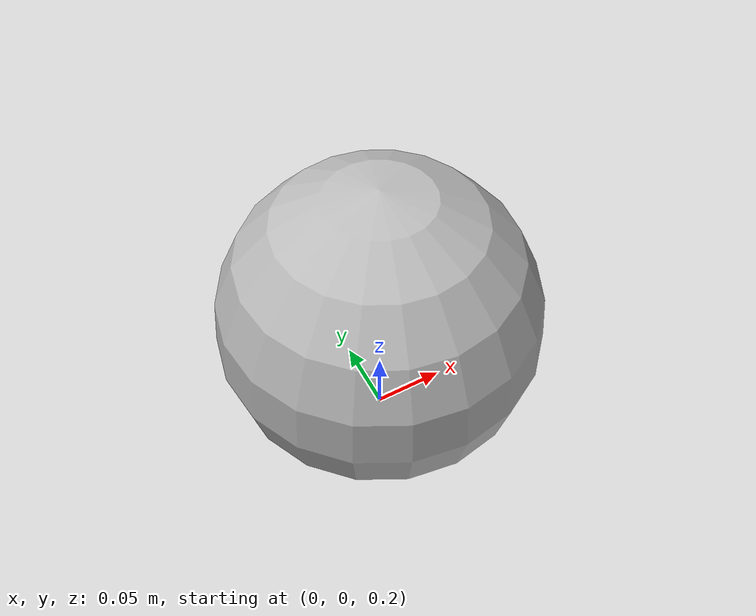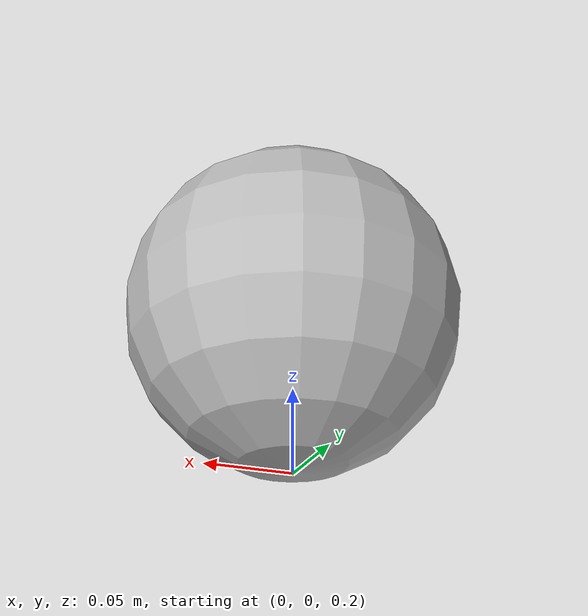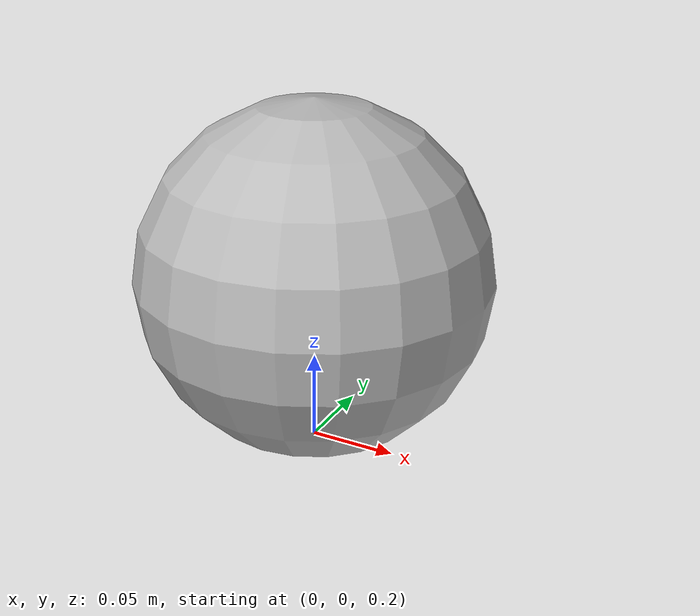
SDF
<?xml version="1.0" ?>
<sdf version="1.4">
  <model name="sphere">
    <pose>0 0 .3 0 0 0</pose>
    <link name="sphere">
      <pose>0 0 0 0 0 0</pose>
      <inertial>
        <mass>1.</mass>
      </inertial>
      <visual name="sphere">
        <pose>0 0 0 0 0 0</pose>
        <geometry>
          <sphere>
            <radius>0.1</radius>
          </sphere>
        </geometry>
        <material/>
      </visual>
      <collision name="sphere">
        <geometry>
          <sphere>
            <radius>0.1</radius>
          </sphere>
        </geometry>
      </collision>
    </link>
    <static>1</static>
  </model>

  <!-- Note that this model intentionally doesn't have visual element. -->
  <model name="invisible_box">
    <pose>0 0 0.015 0 0 0</pose>
    <link name="box">
      <pose>0 0 0 0 0 0</pose>
        <inertial>
          <mass>1.</mass>
        </inertial>
        <collision name="box">
          <geometry>
            <box>
              <size>0.02 1.0 0.03</size>
            </box>
          </geometry>
        </collision>
    </link>
    <static>1</static>
  </model>
</sdf>
